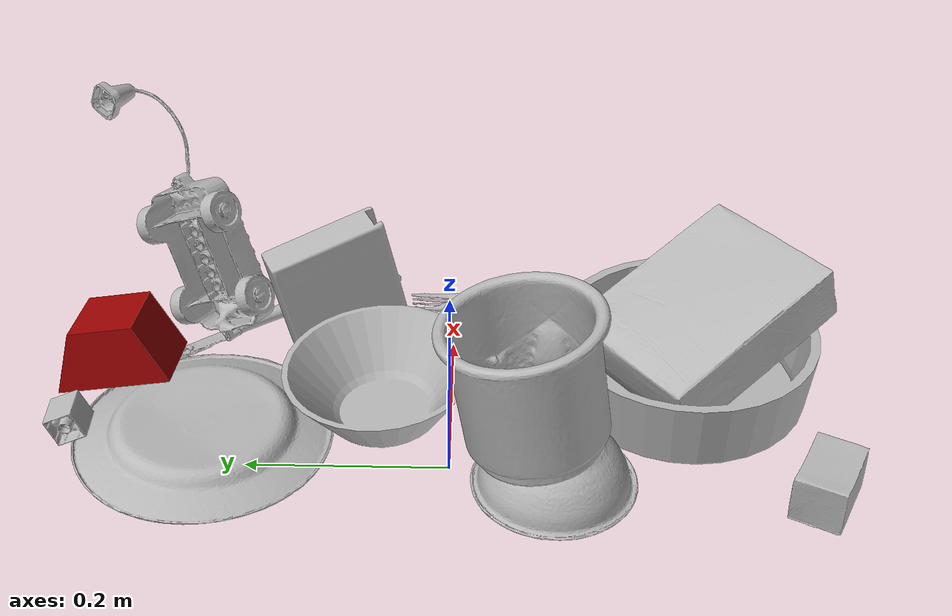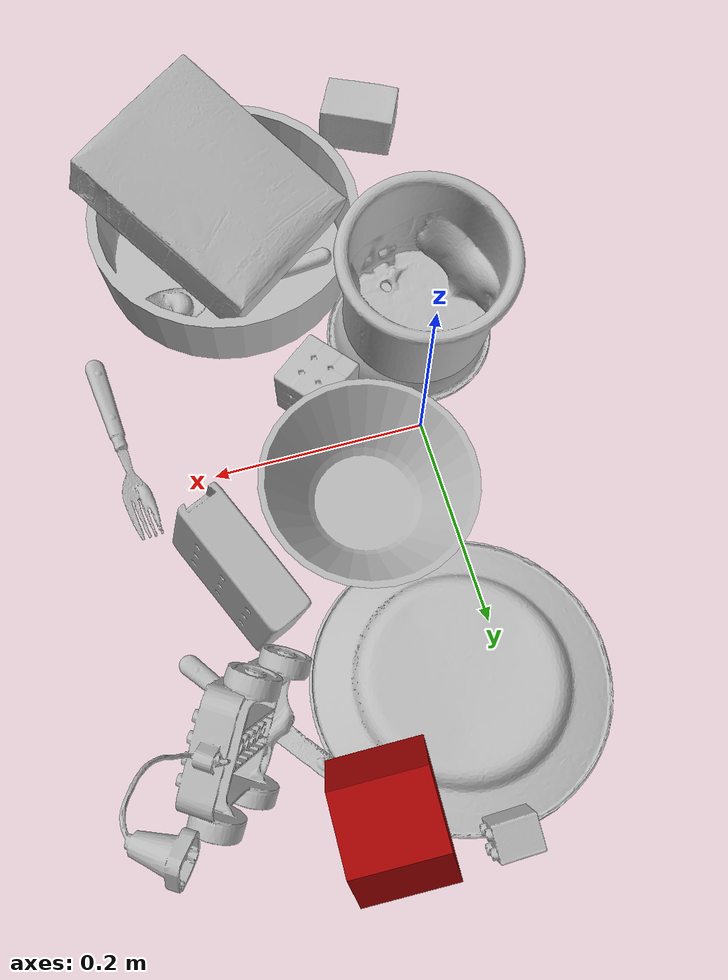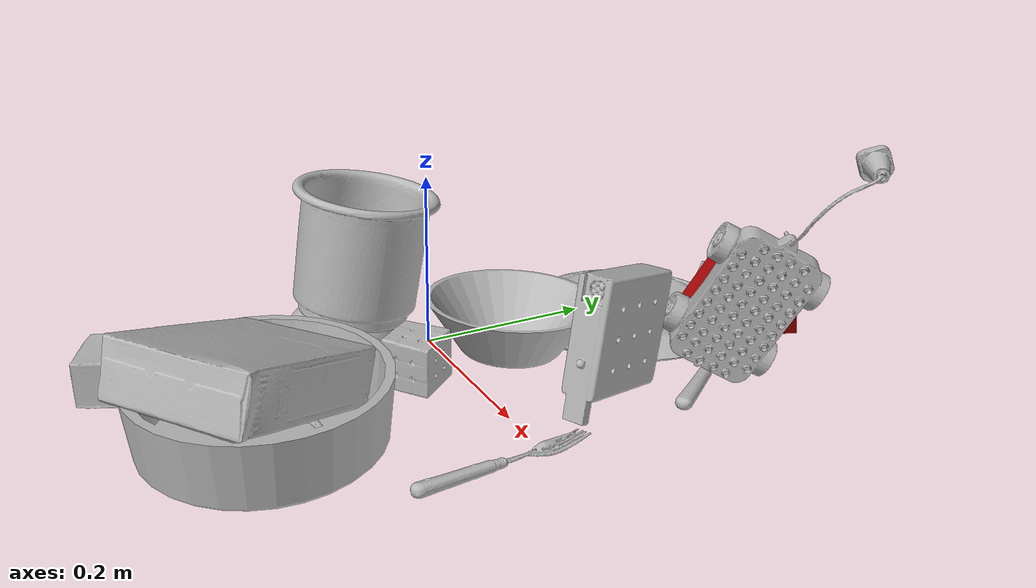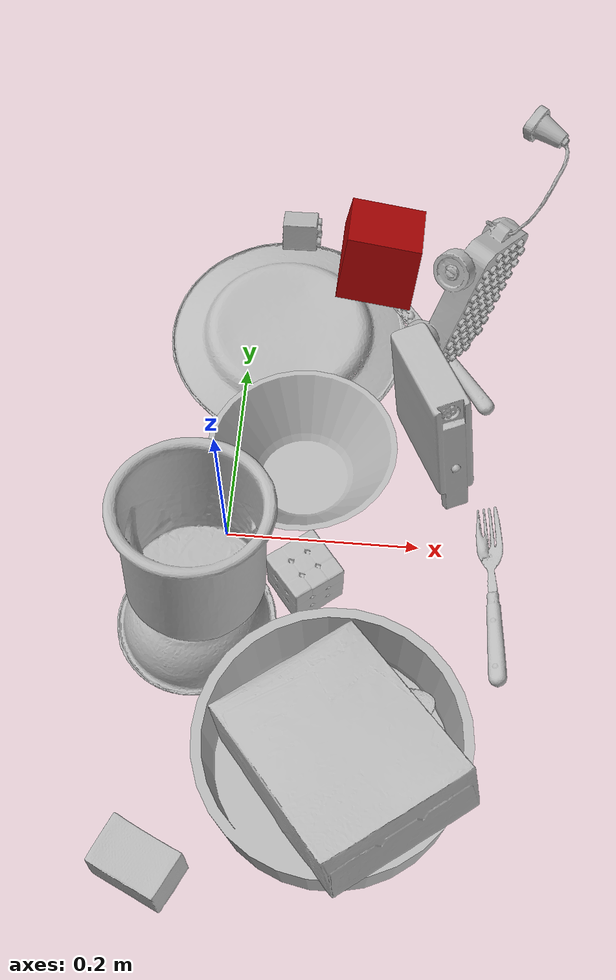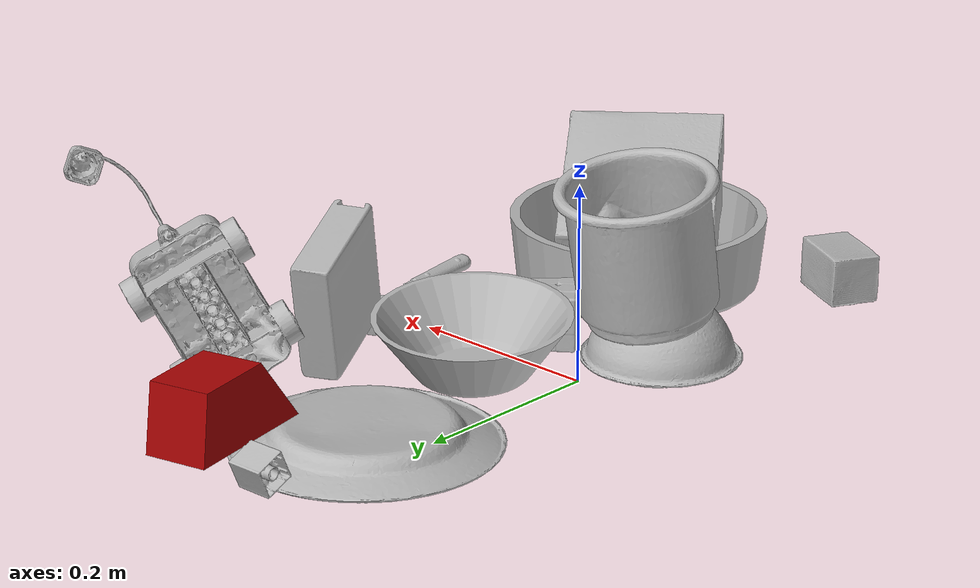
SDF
<sdf version="1.4">
  <world name="default">
    <light name="light1" type="point">
      <pose>0 0 1 0 0 0</pose>
      <diffuse>3 3 3 1</diffuse>
      <specular>3 3 3 1</specular>
    </light>
    <light name="light2" type="point">
      <pose>0 0.5 2 0 0 0</pose>
      <diffuse>1 1 1 1</diffuse>
      <specular>1 1 1 1</specular>
    </light>
    <light name="light3" type="point">
      <pose>0 0.5 2 0 0 0</pose>
      <diffuse>3 3 3 1</diffuse>
      <specular>3 3 3 1</specular>
    </light>
    <scene>
      <ambient>0.7 0.7 0.7</ambient>
    </scene>
    <model name="plate1">
      <link name="link_plate1">
        <collision name="default">
          <geometry>
            <mesh>
              <uri>model://pan_tefal/collision_meshes/collision.obj</uri>
              <scale>1.0 1.0 1.0</scale>
            </mesh>
          </geometry>
          <surface>
            <friction>
              <ode>
                <mu>0.5</mu>
                <mu2>0.5</mu2>
              </ode>
            </friction>
          <contact>
        <ode>
            <max_vel>0</max_vel>
            <min_depth>0.0001</min_depth>
            <kp>1e8</kp>
        </ode>
    </contact></surface>
        </collision>
        <visual name="default">
          <geometry>
            <mesh>
              <uri>model://pan_tefal/visual_meshes/visual.dae</uri>
              <scale>1.0 1.0 1.0</scale>
            </mesh>
          </geometry>
        </visual>
        <inertial>
          <mass>0.7575002908706665</mass>
          <pose>-0.00018002181604970247 3.278869189671241e-05 -0.00851493701338768 0.0008190213215647545 -0.0003301469994364688 -0.3318472895374236</pose>
          <inertia>
            <ixx>0.0052289874</ixx>
            <iyy>0.0052627004</iyy>
            <izz>0.009625561</izz>
            <ixy>0</ixy>
            <ixz>0</ixz>
            <iyz>0</iyz>
          </inertia>
        </inertial>
      </link>
      <pose>0.13077260553836823 -0.23854960501194 0.03805066645145416 -1.4685637523969158e-05 -2.5993273468103303e-06 0.6398428729610983</pose>
    </model>
    <model name="plate2">
      <link name="link_plate2">
        <collision name="default">
          <geometry>
            <mesh>
              <uri>model://plate/collision_meshes/collision.obj</uri>
              <scale>1.0 1.0 1.0</scale>
            </mesh>
          </geometry>
          <surface>
            <friction>
              <ode>
                <mu>0.5</mu>
                <mu2>0.5</mu2>
              </ode>
            </friction>
          <contact>
        <ode>
            <max_vel>0</max_vel>
            <min_depth>0.0001</min_depth>
            <kp>1e8</kp>
        </ode>
    </contact></surface>
        </collision>
        <visual name="default">
          <geometry>
            <mesh>
              <uri>model://plate/visual_meshes/visual.dae</uri>
              <scale>1.0 1.0 1.0</scale>
            </mesh>
          </geometry>
        </visual>
        <inertial>
          <mass>0.24305373430252075</mass>
          <pose>-0.0006044657784514129 0.0002782582014333457 -0.0010561988456174731 0.0022187349237576767 -0.0032255124479001144 0.4526250186623527</pose>
          <inertia>
            <ixx>0.00113701</ixx>
            <iyy>0.0011261352</iyy>
            <izz>0.0022238225</izz>
            <ixy>0</ixy>
            <ixz>0</ixz>
            <iyz>0</iyz>
          </inertia>
        </inertial>
      </link>
      <pose>0.0415622852742672 0.2463018298149109 0.013448335230350494 3.141417818690915 -0.0031651219944836004 1.028439482247798</pose>
    </model>
    <model name="bowl1">
      <link name="link_bowl1">
        <collision name="default">
          <geometry>
            <mesh>
              <uri>model://bowl/collision_meshes/collision.obj</uri>
              <scale>1.0 1.0 1.0</scale>
            </mesh>
          </geometry>
          <surface>
            <friction>
              <ode>
                <mu>0.5</mu>
                <mu2>0.5</mu2>
              </ode>
            </friction>
          <contact>
        <ode>
            <max_vel>0</max_vel>
            <min_depth>0.0001</min_depth>
            <kp>1e8</kp>
        </ode>
    </contact></surface>
        </collision>
        <visual name="default">
          <geometry>
            <mesh>
              <uri>model://bowl/visual_meshes/visual.dae</uri>
              <scale>1.0 1.0 1.0</scale>
            </mesh>
          </geometry>
        </visual>
        <inertial>
          <mass>0.08028676360845566</mass>
          <pose>0.00020445045083761215 -0.0010302026057615876 -0.0008042661938816309 -0.015764207515600946 0.014546645366850262 0.7140316236369888</pose>
          <inertia>
            <ixx>0.00018442512</ixx>
            <iyy>0.00018030431</iyy>
            <izz>0.0003102665</izz>
            <ixy>0</ixy>
            <ixz>0</ixz>
            <iyz>0</iyz>
          </inertia>
        </inertial>
      </link>
      <pose>-0.0190670695155859 -0.10069270431995392 0.02724393643438816 -3.132784374764884 0.0006558255292064907 -1.7745078992333725</pose>
    </model>
    <model name="bowl2">
      <link name="link_bowl2">
        <collision name="default">
          <geometry>
            <mesh>
              <uri>model://bowl_a/collision_meshes/collision.obj</uri>
              <scale>1.0 1.0 1.0</scale>
            </mesh>
          </geometry>
          <surface>
            <friction>
              <ode>
                <mu>0.5</mu>
                <mu2>0.5</mu2>
              </ode>
            </friction>
          <contact>
        <ode>
            <max_vel>0</max_vel>
            <min_depth>0.0001</min_depth>
            <kp>1e8</kp>
        </ode>
    </contact></surface>
        </collision>
        <visual name="default">
          <geometry>
            <mesh>
              <uri>model://bowl_a/visual_meshes/visual.dae</uri>
              <scale>1.0 1.0 1.0</scale>
            </mesh>
          </geometry>
        </visual>
        <inertial>
          <mass>0.2016693353652954</mass>
          <pose>0.000278673687716946 4.731108856503852e-05 -0.0013765295734629035 -0.0009805301894988984 -0.0010938186520021772 -0.19123883274053055</pose>
          <inertia>
            <ixx>0.00057416206</ixx>
            <iyy>0.000577687</iyy>
            <izz>0.0010211696</izz>
            <ixy>0</ixy>
            <ixz>0</ixz>
            <iyz>0</iyz>
          </inertia>
        </inertial>
      </link>
      <pose>0.07437607645988464 0.06869132071733475 0.03912276402115822 0.07064990991799151 0.01462722872233468 -2.884441788432484</pose>
    </model>
    <model name="silverware1">
      <link name="link_silverware1">
        <collision name="default">
          <geometry>
            <mesh>
              <uri>model://spoon/collision_meshes/collision.obj</uri>
              <scale>1.0 1.0 1.0</scale>
            </mesh>
          </geometry>
          <surface>
            <friction>
              <ode>
                <mu>0.5</mu>
                <mu2>0.5</mu2>
              </ode>
            </friction>
          <contact>
        <ode>
            <max_vel>0</max_vel>
            <min_depth>0.0001</min_depth>
            <kp>1e8</kp>
        </ode>
    </contact></surface>
        </collision>
        <visual name="default">
          <geometry>
            <mesh>
              <uri>model://spoon/visual_meshes/visual.dae</uri>
              <scale>1.0 1.0 1.0</scale>
            </mesh>
          </geometry>
        </visual>
        <inertial>
          <mass>0.023438503965735435</mass>
          <pose>-0.005526317749172449 -0.0016034176805987954 -0.000727164966519922 0.03521671071703309 -0.03906584129558259 0.006150610048623938</pose>
          <inertia>
            <ixx>1.3036873e-06</ixx>
            <iyy>8.918272e-05</iyy>
            <izz>8.982564e-05</izz>
            <ixy>0</ixy>
            <ixz>0</ixz>
            <iyz>0</iyz>
          </inertia>
        </inertial>
      </link>
      <pose>0.13022556900978088 -0.1890498399734497 0.016966411843895912 0.05223227025425274 0.00012298930707733014 0.12405666118457213</pose>
    </model>
    <model name="box1">
      <link name="link_box1">
        <collision name="default">
          <geometry>
            <mesh>
              <uri>model://cracker_box/collision_meshes/collision.obj</uri>
              <scale>1.0 1.0 1.0</scale>
            </mesh>
          </geometry>
          <surface>
            <friction>
              <ode>
                <mu>0.5</mu>
                <mu2>0.5</mu2>
              </ode>
            </friction>
          <contact>
        <ode>
            <max_vel>0</max_vel>
            <min_depth>0.0001</min_depth>
            <kp>1e8</kp>
        </ode>
    </contact></surface>
        </collision>
        <visual name="default">
          <geometry>
            <mesh>
              <uri>model://cracker_box/visual_meshes/visual.dae</uri>
              <scale>1.0 1.0 1.0</scale>
            </mesh>
          </geometry>
        </visual>
        <inertial>
          <mass>3.1733922958374023</mass>
          <pose>0.0009464119793847203 0.00025434247800149024 -0.0017029535956680775 -0.00031620768891544627 -0.011106485874643508 0.0025467963987026074</pose>
          <inertia>
            <ixx>0.008071693</ixx>
            <iyy>0.013327951</iyy>
            <izz>0.01902021</izz>
            <ixy>0</ixy>
            <ixz>0</ixz>
            <iyz>0</iyz>
          </inertia>
        </inertial>
      </link>
      <pose>0.14120329916477203 -0.25549831986427307 0.08375371247529984 -3.1382995994311043 0.3173626269086205 2.222578713185853</pose>
    </model>
    <model name="box2">
      <link name="link_box2">
        <collision name="default">
          <geometry>
            <mesh>
              <uri>model://rubiks_cube/collision_meshes/collision.obj</uri>
              <scale>1.0 1.0 1.0</scale>
            </mesh>
          </geometry>
          <surface>
            <friction>
              <ode>
                <mu>0.5</mu>
                <mu2>0.5</mu2>
              </ode>
            </friction>
          <contact>
        <ode>
            <max_vel>0</max_vel>
            <min_depth>0.0001</min_depth>
            <kp>1e8</kp>
        </ode>
    </contact></surface>
        </collision>
        <visual name="default">
          <geometry>
            <mesh>
              <uri>model://rubiks_cube/visual_meshes/visual.dae</uri>
              <scale>1.0 1.0 1.0</scale>
            </mesh>
          </geometry>
        </visual>
        <inertial>
          <mass>0.15184316039085388</mass>
          <pose>2.6721041649580002e-05 5.2569666877388954e-05 -7.264316536748083e-06 -0.0546734747968529 -0.09813870099197174 -0.03445517010401606</pose>
          <inertia>
            <ixx>8.390353e-05</ixx>
            <iyy>8.351226e-05</iyy>
            <izz>8.459882e-05</izz>
            <ixy>0</ixy>
            <ixz>0</ixz>
            <iyz>0</iyz>
          </inertia>
        </inertial>
      </link>
      <pose>0.08727593719959259 -0.05362227186560631 0.029329972341656685 1.5775162953486748 -0.0168369104956977 2.2470806636297485</pose>
    </model>
    <model name="cup1">
      <link name="link_cup1">
        <collision name="default">
          <geometry>
            <mesh>
              <uri>model://f_cups/collision_meshes/collision.obj</uri>
              <scale>2.0 2.0 2.0</scale>
            </mesh>
          </geometry>
          <surface>
            <friction>
              <ode>
                <mu>0.5</mu>
                <mu2>0.5</mu2>
              </ode>
            </friction>
          <contact>
        <ode>
            <max_vel>0</max_vel>
            <min_depth>0.0001</min_depth>
            <kp>1e8</kp>
        </ode>
    </contact></surface>
        </collision>
        <visual name="default">
          <geometry>
            <mesh>
              <uri>model://f_cups/visual_meshes/visual.dae</uri>
              <scale>2.0 2.0 2.0</scale>
            </mesh>
          </geometry>
        </visual>
        <inertial>
          <mass>0.31799542903900146</mass>
          <pose>-0.006342939101159573 -0.0012480145087465644 -0.00731107359752059 0.7862267301708457 -0.2607925342729672 -0.18237300859269054</pose>
          <inertia>
            <ixx>0.0011956966</ixx>
            <iyy>0.0012542997</iyy>
            <izz>0.001305761</izz>
            <ixy>0</ixy>
            <ixz>0</ixz>
            <iyz>0</iyz>
          </inertia>
        </inertial>
      </link>
      <pose>-0.01591719686985016 -0.07461075484752655 0.11930600553750992 -0.13375355220119942 0.08618933692442038 0.4590062314161582</pose>
    </model>
    <model name="silverware2">
      <link name="link_silverware2">
        <collision name="default">
          <geometry>
            <mesh>
              <uri>model://knife/collision_meshes/collision.obj</uri>
              <scale>1.0 1.0 1.0</scale>
            </mesh>
          </geometry>
          <surface>
            <friction>
              <ode>
                <mu>0.5</mu>
                <mu2>0.5</mu2>
              </ode>
            </friction>
          <contact>
        <ode>
            <max_vel>0</max_vel>
            <min_depth>0.0001</min_depth>
            <kp>1e8</kp>
        </ode>
    </contact></surface>
        </collision>
        <visual name="default">
          <geometry>
            <mesh>
              <uri>model://knife/visual_meshes/visual.dae</uri>
              <scale>1.0 1.0 1.0</scale>
            </mesh>
          </geometry>
        </visual>
        <inertial>
          <mass>0.01713745854794979</mass>
          <pose>-0.02378525771200657 0.0015275123296305537 5.062021591584198e-05 0.07305753061421462 0.017248419855317693 -0.007409818535045194</pose>
          <inertia>
            <ixx>4.864306e-07</ixx>
            <iyy>6.583934e-05</iyy>
            <izz>6.5996e-05</izz>
            <ixy>0</ixy>
            <ixz>0</ixz>
            <iyz>0</iyz>
          </inertia>
        </inertial>
      </link>
      <pose>0.20171715319156647 0.2485029697418213 0.007752213627099991 -3.0793449657846144 0.008197857934739067 2.2331848413013375</pose>
    </model>
    <model name="silverware3">
      <link name="link_silverware3">
        <collision name="default">
          <geometry>
            <mesh>
              <uri>model://fork/collision_meshes/collision.obj</uri>
              <scale>1.0 1.0 1.0</scale>
            </mesh>
          </geometry>
          <surface>
            <friction>
              <ode>
                <mu>0.5</mu>
                <mu2>0.5</mu2>
              </ode>
            </friction>
          <contact>
        <ode>
            <max_vel>0</max_vel>
            <min_depth>0.0001</min_depth>
            <kp>1e8</kp>
        </ode>
    </contact></surface>
        </collision>
        <visual name="default">
          <geometry>
            <mesh>
              <uri>model://fork/visual_meshes/visual.dae</uri>
              <scale>1.0 1.0 1.0</scale>
            </mesh>
          </geometry>
        </visual>
        <inertial>
          <mass>0.012323527596890926</mass>
          <pose>-0.029570043087005615 0.00046588233090005815 0.0003218861238565296 -0.013551145261099908 -0.01097783717976447 0.01445390335153306</pose>
          <inertia>
            <ixx>4.3200933e-07</ixx>
            <iyy>3.2173175e-05</iyy>
            <izz>3.236641e-05</izz>
            <ixy>0</ixy>
            <ixz>0</ixz>
            <iyz>0</iyz>
          </inertia>
        </inertial>
      </link>
      <pose>0.27914533019065857 -0.0500432550907135 0.005730562377721071 -0.18521933941183438 0.024516069502462174 1.6583213695935042</pose>
    </model>
    <model name="toy1">
      <link name="link_toy1">
        <collision name="default">
          <geometry>
            <mesh>
              <uri>model://foam_brick/collision_meshes/collision.obj</uri>
              <scale>1.0 1.0 1.0</scale>
            </mesh>
          </geometry>
          <surface>
            <friction>
              <ode>
                <mu>0.5</mu>
                <mu2>0.5</mu2>
              </ode>
            </friction>
          <contact>
        <ode>
            <max_vel>0</max_vel>
            <min_depth>0.0001</min_depth>
            <kp>1e8</kp>
        </ode>
    </contact></surface>
        </collision>
        <visual name="default">
          <geometry>
            <mesh>
              <uri>model://foam_brick/visual_meshes/visual.dae</uri>
              <scale>1.0 1.0 1.0</scale>
            </mesh>
          </geometry>
        </visual>
        <inertial>
          <mass>0.22379855811595917</mass>
          <pose>-0.00025224717683158815 0.0003458436403889209 -0.0002532101352699101 -0.29401565582258504 0.017274431815567964 -0.0007449878256007176</pose>
          <inertia>
            <ixx>9.775939e-05</ixx>
            <iyy>0.00015607789</iyy>
            <izz>0.00015806146</izz>
            <ixy>0</ixy>
            <ixz>0</ixz>
            <iyz>0</iyz>
          </inertia>
        </inertial>
      </link>
      <pose>-0.04149078205227852 -0.35645103454589844 0.02549685165286064 3.1325084510731367 0.006607225247761687 2.6881245926793453</pose>
    </model>
    <model name="toy2">
      <link name="link_toy2">
        <collision name="default">
          <geometry>
            <mesh>
              <uri>model://g_lego_duplo/collision_meshes/collision.obj</uri>
              <scale>1.0 1.0 1.0</scale>
            </mesh>
          </geometry>
          <surface>
            <friction>
              <ode>
                <mu>0.5</mu>
                <mu2>0.5</mu2>
              </ode>
            </friction>
          <contact>
        <ode>
            <max_vel>0</max_vel>
            <min_depth>0.0001</min_depth>
            <kp>1e8</kp>
        </ode>
    </contact></surface>
        </collision>
        <visual name="default">
          <geometry>
            <mesh>
              <uri>model://g_lego_duplo/visual_meshes/visual.dae</uri>
              <scale>1.0 1.0 1.0</scale>
            </mesh>
          </geometry>
        </visual>
        <inertial>
          <mass>0.5124852657318115</mass>
          <pose>-0.05004769191145897 0.0017554633086547256 0.003880675183609128 0.010962987419080987 0.0381082502855883 -0.09653031806986456</pose>
          <inertia>
            <ixx>0.0007425969</ixx>
            <iyy>0.0022451086</iyy>
            <izz>0.0028087152</izz>
            <ixy>0</ixy>
            <ixz>0</ixz>
            <iyz>0</iyz>
          </inertia>
        </inertial>
      </link>
      <pose>0.2534092664718628 0.2855004668235779 0.1402207762002945 1.7407055503559057 -1.0857251719275813 0.8265193372456784</pose>
    </model>
    <model name="toy3">
      <link name="link_toy3">
        <collision name="default">
          <geometry>
            <mesh>
              <uri>model://nine_hole_peg_test/collision_meshes/collision.obj</uri>
              <scale>1.0 1.0 1.0</scale>
            </mesh>
          </geometry>
          <surface>
            <friction>
              <ode>
                <mu>0.5</mu>
                <mu2>0.5</mu2>
              </ode>
            </friction>
          <contact>
        <ode>
            <max_vel>0</max_vel>
            <min_depth>0.0001</min_depth>
            <kp>1e8</kp>
        </ode>
    </contact></surface>
        </collision>
        <visual name="default">
          <geometry>
            <mesh>
              <uri>model://nine_hole_peg_test/visual_meshes/visual.dae</uri>
              <scale>1.0 1.0 1.0</scale>
            </mesh>
          </geometry>
        </visual>
        <inertial>
          <mass>0.8364987969398499</mass>
          <pose>-0.004617386497557163 -0.009647614322602749 2.6460691515239887e-05 -0.0014666793226822761 0.000719418076932787 -0.634241593386854</pose>
          <inertia>
            <ixx>0.0013080036</ixx>
            <iyy>0.0012212693</iyy>
            <izz>0.0022920077</izz>
            <ixy>0</ixy>
            <ixz>0</ixz>
            <iyz>0</iyz>
          </inertia>
        </inertial>
      </link>
      <pose>0.20709921419620514 0.11723697930574417 0.06649717688560486 -1.5581379686095225 -0.21883674658078003 -1.1410953164981243</pose>
    </model>
    <model name="toy4">
      <link name="link_toy4">
        <collision name="default">
          <geometry>
            <mesh>
              <uri>model://b_lego_duplo/collision_meshes/collision.obj</uri>
              <scale>1.0 1.0 1.0</scale>
            </mesh>
          </geometry>
          <surface>
            <friction>
              <ode>
                <mu>0.5</mu>
                <mu2>0.5</mu2>
              </ode>
            </friction>
          <contact>
        <ode>
            <max_vel>0</max_vel>
            <min_depth>0.0001</min_depth>
            <kp>1e8</kp>
        </ode>
    </contact></surface>
        </collision>
        <visual name="default">
          <geometry>
            <mesh>
              <uri>model://b_lego_duplo/visual_meshes/visual.dae</uri>
              <scale>1.0 1.0 1.0</scale>
            </mesh>
          </geometry>
        </visual>
        <inertial>
          <mass>0.0316849946975708</mass>
          <pose>-0.00011053055641241372 -9.15226701181382e-06 0.0019294292433187366 -0.03749472548528336 -0.026354304906346077 0.4518915128408031</pose>
          <inertia>
            <ixx>6.4845735e-06</ixx>
            <iyy>6.5281647e-06</iyy>
            <izz>5.777544e-06</izz>
            <ixy>0</ixy>
            <ixz>0</ixz>
            <iyz>0</iyz>
          </inertia>
        </inertial>
      </link>
      <pose>0.04435597360134125 0.38012340664863586 0.02102706767618656 1.5680059665904447 -1.1649862897912433 1.5977376356880235</pose>
    </model>
    <model name="toy5">
      <link name="link_toy5">
        <collision name="default">
          <geometry>
            <mesh>
              <uri>model://prism/collision_meshes/collision.obj</uri>
              <scale>1.0 1.0 1.0</scale>
            </mesh>
          </geometry>
          <surface>
            <friction>
              <ode>
                <mu>0.5</mu>
                <mu2>0.5</mu2>
              </ode>
            </friction>
          <contact>
        <ode>
            <max_vel>0</max_vel>
            <min_depth>0.0001</min_depth>
            <kp>1e8</kp>
        </ode>
    </contact></surface>
        </collision>
        <visual name="default">
          <geometry>
            <mesh>
              <uri>model://prism/visual_meshes/visual.dae</uri>
              <scale>1.0 1.0 1.0</scale>
            </mesh>
          </geometry>
        </visual>
        <inertial>
          <mass>0.34586653113365173</mass>
          <pose>-9.853597293840721e-05 -4.96157269935793e-07 -0.0033869100734591484 0.0 0.006559180766136186 0.0</pose>
          <inertia>
            <ixx>0.00031214024</ixx>
            <iyy>0.00037722557</iyy>
            <izz>0.00046205617</izz>
            <ixy>0</ixy>
            <ixz>0</ixz>
            <iyz>0</iyz>
          </inertia>
        </inertial>
      </link>
      <pose>0.13707885146141052 0.347830593585968 0.04669443890452385 0.145185785119577 0.15857905884447718 1.5529881169731576</pose>
    </model>
  <physics type="ode">
      <max_contacts>50</max_contacts>
      <ode>
        <solver>
          <type>quick</type>
          <iters>75</iters>
        </solver>
        <constraints>
          <contact_max_correcting_vel>0</contact_max_correcting_vel>
          <contact_surface_layer>0</contact_surface_layer>
        </constraints>
      </ode>
    </physics></world>
</sdf>
